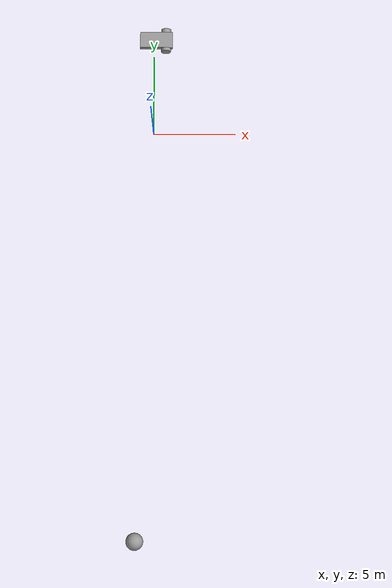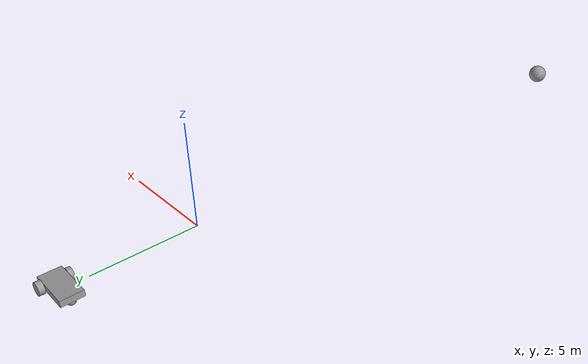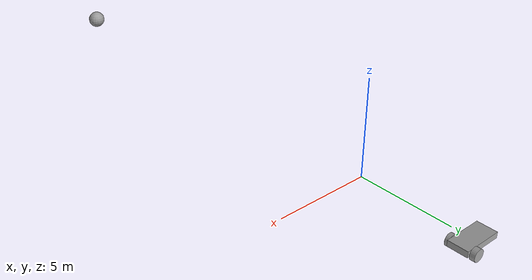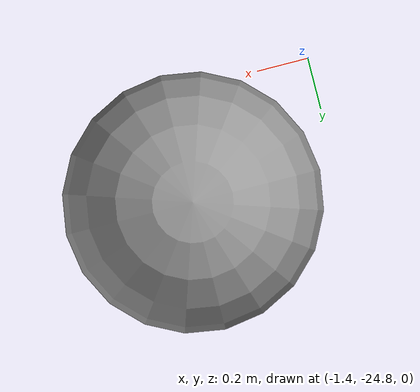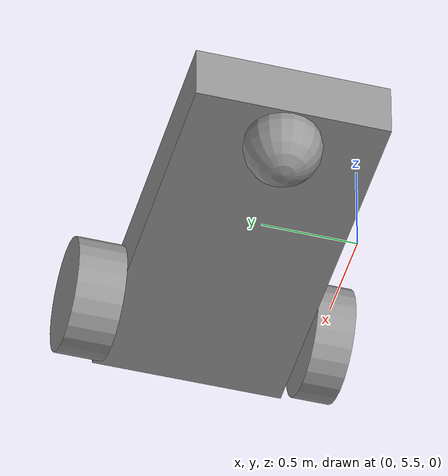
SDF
<?xml version='1.0'?>
<sdf version='1.7'>
  <model name='MyRobot'>
    <link name='link_0'>
      <inertial>
        <mass>1</mass>
        <inertia>
          <ixx>0.166667</ixx>
          <ixy>0</ixy>
          <ixz>0</ixz>
          <iyy>0.166667</iyy>
          <iyz>0</iyz>
          <izz>0.166667</izz>
        </inertia>
        <pose>0 0 0 0 -0 0</pose>
      </inertial>
      <pose>0.108951 6.08754 0.06 0 -0 0</pose>
      <gravity>1</gravity>
      <self_collide>0</self_collide>
      <kinematic>0</kinematic>
      <enable_wind>0</enable_wind>
      <visual name='visual'>
        <pose>0 0 0 0 -0 0</pose>
        <geometry>
          <box>
            <size>2 1 0.3</size>
          </box>
        </geometry>
        <material>
          <lighting>1</lighting>
          <script>
            <uri>file://media/materials/scripts/gazebo.material</uri>
            <name>Gazebo/Grey</name>
          </script>
          <shader type='pixel'>
            <normal_map>__default__</normal_map>
          </shader>
          <ambient>0.3 0.3 0.3 1</ambient>
          <diffuse>0.7 0.7 0.7 1</diffuse>
          <specular>0.01 0.01 0.01 1</specular>
          <emissive>0 0 0 1</emissive>
        </material>
        <transparency>0</transparency>
        <cast_shadows>1</cast_shadows>
      </visual>
      <collision name='collision'>
        <laser_retro>0</laser_retro>
        <max_contacts>10</max_contacts>
        <pose>0 0 0 0 -0 0</pose>
        <geometry>
          <box>
            <size>2 1 0.3</size>
          </box>
        </geometry>
        <surface>
          <friction>
            <ode>
              <mu>1</mu>
              <mu2>1</mu2>
              <fdir1>0 0 0</fdir1>
              <slip1>0</slip1>
              <slip2>0</slip2>
            </ode>
            <torsional>
              <coefficient>1</coefficient>
              <patch_radius>0</patch_radius>
              <surface_radius>0</surface_radius>
              <use_patch_radius>1</use_patch_radius>
              <ode>
                <slip>0</slip>
              </ode>
            </torsional>
          </friction>
          <bounce>
            <restitution_coefficient>0</restitution_coefficient>
            <threshold>1e+06</threshold>
          </bounce>
          <contact>
            <collide_without_contact>0</collide_without_contact>
            <collide_without_contact_bitmask>1</collide_without_contact_bitmask>
            <collide_bitmask>1</collide_bitmask>
            <ode>
              <soft_cfm>0</soft_cfm>
              <soft_erp>0.2</soft_erp>
              <kp>1e+13</kp>
              <kd>1</kd>
              <max_vel>0.01</max_vel>
              <min_depth>0</min_depth>
            </ode>
            <bullet>
              <split_impulse>1</split_impulse>
              <split_impulse_penetration_threshold>-0.01</split_impulse_penetration_threshold>
              <soft_cfm>0</soft_cfm>
              <soft_erp>0.2</soft_erp>
              <kp>1e+13</kp>
              <kd>1</kd>
            </bullet>
          </contact>
        </surface>
      </collision>
    </link>
    <link name='link_2'>
      <inertial>
        <mass>1</mass>
        <inertia>
          <ixx>0.145833</ixx>
          <ixy>0</ixy>
          <ixz>0</ixz>
          <iyy>0.145833</iyy>
          <iyz>0</iyz>
          <izz>0.125</izz>
        </inertia>
        <pose>0.6 0 0 0 -0 0</pose>
      </inertial>
      <pose>0.708951 6.71257 -0.04 1.5707 -0 0</pose>
      <gravity>1</gravity>
      <self_collide>0</self_collide>
      <kinematic>0</kinematic>
      <enable_wind>0</enable_wind>
      <visual name='visual'>
        <pose>0 0 0 0 -0 0</pose>
        <geometry>
          <cylinder>
            <radius>0.3</radius>
            <length>0.25</length>
          </cylinder>
        </geometry>
        <material>
          <lighting>1</lighting>
          <script>
            <uri>file://media/materials/scripts/gazebo.material</uri>
            <name>Gazebo/Grey</name>
          </script>
          <shader type='pixel'>
            <normal_map>__default__</normal_map>
          </shader>
          <ambient>0.3 0.3 0.3 1</ambient>
          <diffuse>0.7 0.7 0.7 1</diffuse>
          <specular>0.01 0.01 0.01 1</specular>
          <emissive>0 0 0 1</emissive>
        </material>
        <transparency>0</transparency>
        <cast_shadows>1</cast_shadows>
      </visual>
      <collision name='collision'>
        <laser_retro>0</laser_retro>
        <max_contacts>10</max_contacts>
        <pose>0 0 0 0 -0 0</pose>
        <geometry>
          <cylinder>
            <radius>0.3</radius>
            <length>0.25</length>
          </cylinder>
        </geometry>
        <surface>
          <friction>
            <ode>
              <mu>1</mu>
              <mu2>1</mu2>
              <fdir1>0 0 0</fdir1>
              <slip1>0</slip1>
              <slip2>0</slip2>
            </ode>
            <torsional>
              <coefficient>1</coefficient>
              <patch_radius>0</patch_radius>
              <surface_radius>0</surface_radius>
              <use_patch_radius>1</use_patch_radius>
              <ode>
                <slip>0</slip>
              </ode>
            </torsional>
          </friction>
          <bounce>
            <restitution_coefficient>0</restitution_coefficient>
            <threshold>1e+06</threshold>
          </bounce>
          <contact>
            <collide_without_contact>0</collide_without_contact>
            <collide_without_contact_bitmask>1</collide_without_contact_bitmask>
            <collide_bitmask>1</collide_bitmask>
            <ode>
              <soft_cfm>0</soft_cfm>
              <soft_erp>0.2</soft_erp>
              <kp>1e+13</kp>
              <kd>1</kd>
              <max_vel>0.01</max_vel>
              <min_depth>0</min_depth>
            </ode>
            <bullet>
              <split_impulse>1</split_impulse>
              <split_impulse_penetration_threshold>-0.01</split_impulse_penetration_threshold>
              <soft_cfm>0</soft_cfm>
              <soft_erp>0.2</soft_erp>
              <kp>1e+13</kp>
              <kd>1</kd>
            </bullet>
          </contact>
        </surface>
      </collision>
    </link>
    <link name='link_3'>
      <inertial>
        <mass>1</mass>
        <inertia>
          <ixx>0.145833</ixx>
          <ixy>0</ixy>
          <ixz>0</ixz>
          <iyy>0.145833</iyy>
          <iyz>0</iyz>
          <izz>0.125</izz>
        </inertia>
        <pose>0 0 0 0 -0 0</pose>
      </inertial>
      <pose>0.708951 5.48751 -0.04 1.5707 -0 0</pose>
      <gravity>1</gravity>
      <self_collide>0</self_collide>
      <kinematic>0</kinematic>
      <enable_wind>0</enable_wind>
      <visual name='visual'>
        <pose>0 0 0 0 -0 0</pose>
        <geometry>
          <cylinder>
            <radius>0.3</radius>
            <length>0.2</length>
          </cylinder>
        </geometry>
        <material>
          <lighting>1</lighting>
          <script>
            <uri>file://media/materials/scripts/gazebo.material</uri>
            <name>Gazebo/Grey</name>
          </script>
          <shader type='pixel'>
            <normal_map>__default__</normal_map>
          </shader>
          <ambient>0.3 0.3 0.3 1</ambient>
          <diffuse>0.7 0.7 0.7 1</diffuse>
          <specular>0.01 0.01 0.01 1</specular>
          <emissive>0 0 0 1</emissive>
        </material>
        <transparency>0</transparency>
        <cast_shadows>1</cast_shadows>
      </visual>
      <collision name='collision'>
        <laser_retro>0</laser_retro>
        <max_contacts>10</max_contacts>
        <pose>0 0 0 0 -0 0</pose>
        <geometry>
          <cylinder>
            <radius>0.3</radius>
            <length>0.2</length>
          </cylinder>
        </geometry>
        <surface>
          <friction>
            <ode>
              <mu>1</mu>
              <mu2>1</mu2>
              <fdir1>0 0 0</fdir1>
              <slip1>0</slip1>
              <slip2>0</slip2>
            </ode>
            <torsional>
              <coefficient>1</coefficient>
              <patch_radius>0</patch_radius>
              <surface_radius>0</surface_radius>
              <use_patch_radius>1</use_patch_radius>
              <ode>
                <slip>0</slip>
              </ode>
            </torsional>
          </friction>
          <bounce>
            <restitution_coefficient>0</restitution_coefficient>
            <threshold>1e+06</threshold>
          </bounce>
          <contact>
            <collide_without_contact>0</collide_without_contact>
            <collide_without_contact_bitmask>1</collide_without_contact_bitmask>
            <collide_bitmask>1</collide_bitmask>
            <ode>
              <soft_cfm>0</soft_cfm>
              <soft_erp>0.2</soft_erp>
              <kp>1e+13</kp>
              <kd>1</kd>
              <max_vel>0.01</max_vel>
              <min_depth>0</min_depth>
            </ode>
            <bullet>
              <split_impulse>1</split_impulse>
              <split_impulse_penetration_threshold>-0.01</split_impulse_penetration_threshold>
              <soft_cfm>0</soft_cfm>
              <soft_erp>0.2</soft_erp>
              <kp>1e+13</kp>
              <kd>1</kd>
            </bullet>
          </contact>
        </surface>
      </collision>
    </link>
    <link name='link_4'>
      <inertial>
        <mass>1</mass>
        <inertia>
          <ixx>0.1</ixx>
          <ixy>0</ixy>
          <ixz>0</ixz>
          <iyy>0.1</iyy>
          <iyz>0</iyz>
          <izz>0.1</izz>
        </inertia>
      </inertial>
      <pose>-0.835803 -24.3751 0.16 0 -0 0</pose>
      <visual name='visual'>
        <pose>0 0 0 0 -0 0</pose>
        <geometry>
          <sphere>
            <radius>0.5</radius>
          </sphere>
        </geometry>
        <material>
          <lighting>1</lighting>
          <script>
            <uri>file://media/materials/scripts/gazebo.material</uri>
            <name>Gazebo/Grey</name>
          </script>
          <shader type='pixel'/>
        </material>
        <transparency>0</transparency>
        <cast_shadows>1</cast_shadows>
      </visual>
      <collision name='collision'>
        <laser_retro>0</laser_retro>
        <max_contacts>10</max_contacts>
        <pose>0 0 0 0 -0 0</pose>
        <geometry>
          <sphere>
            <radius>0.5</radius>
          </sphere>
        </geometry>
        <surface>
          <friction>
            <ode>
              <mu>1</mu>
              <mu2>1</mu2>
              <fdir1>0 0 0</fdir1>
              <slip1>0</slip1>
              <slip2>0</slip2>
            </ode>
            <torsional>
              <coefficient>1</coefficient>
              <patch_radius>0</patch_radius>
              <surface_radius>0</surface_radius>
              <use_patch_radius>1</use_patch_radius>
              <ode>
                <slip>0</slip>
              </ode>
            </torsional>
          </friction>
          <bounce>
            <restitution_coefficient>0</restitution_coefficient>
            <threshold>1e+06</threshold>
          </bounce>
          <contact>
            <collide_without_contact>0</collide_without_contact>
            <collide_without_contact_bitmask>1</collide_without_contact_bitmask>
            <collide_bitmask>1</collide_bitmask>
            <ode>
              <soft_cfm>0</soft_cfm>
              <soft_erp>0.2</soft_erp>
              <kp>1e+13</kp>
              <kd>1</kd>
              <max_vel>0.01</max_vel>
              <min_depth>0</min_depth>
            </ode>
            <bullet>
              <split_impulse>1</split_impulse>
              <split_impulse_penetration_threshold>-0.01</split_impulse_penetration_threshold>
              <soft_cfm>0</soft_cfm>
              <soft_erp>0.2</soft_erp>
              <kp>1e+13</kp>
              <kd>1</kd>
            </bullet>
          </contact>
        </surface>
      </collision>
    </link>
    <link name='link_6'>
      <inertial>
        <mass>1</mass>
        <inertia>
          <ixx>0.1</ixx>
          <ixy>0</ixy>
          <ixz>0</ixz>
          <iyy>0.1</iyy>
          <iyz>0</iyz>
          <izz>0.1</izz>
        </inertia>
        <pose>0 0 0 0 -0 0</pose>
      </inertial>
      <pose>-0.691049 6.08754 -0.14 0 -0 0</pose>
      <gravity>1</gravity>
      <self_collide>0</self_collide>
      <kinematic>0</kinematic>
      <enable_wind>0</enable_wind>
      <visual name='visual'>
        <pose>0 0 0 0 -0 0</pose>
        <geometry>
          <sphere>
            <radius>0.2</radius>
          </sphere>
        </geometry>
        <material>
          <lighting>1</lighting>
          <script>
            <uri>file://media/materials/scripts/gazebo.material</uri>
            <name>Gazebo/Grey</name>
          </script>
          <shader type='pixel'>
            <normal_map>__default__</normal_map>
          </shader>
          <ambient>0.3 0.3 0.3 1</ambient>
          <diffuse>0.7 0.7 0.7 1</diffuse>
          <specular>0.01 0.01 0.01 1</specular>
          <emissive>0 0 0 1</emissive>
        </material>
        <transparency>0</transparency>
        <cast_shadows>1</cast_shadows>
      </visual>
      <collision name='collision'>
        <laser_retro>0</laser_retro>
        <max_contacts>10</max_contacts>
        <pose>0 0 0 0 -0 0</pose>
        <geometry>
          <sphere>
            <radius>0.2</radius>
          </sphere>
        </geometry>
        <surface>
          <friction>
            <ode>
              <mu>1</mu>
              <mu2>1</mu2>
              <fdir1>0 0 0</fdir1>
              <slip1>0</slip1>
              <slip2>0</slip2>
            </ode>
            <torsional>
              <coefficient>1</coefficient>
              <patch_radius>0</patch_radius>
              <surface_radius>0</surface_radius>
              <use_patch_radius>1</use_patch_radius>
              <ode>
                <slip>0</slip>
              </ode>
            </torsional>
          </friction>
          <bounce>
            <restitution_coefficient>0</restitution_coefficient>
            <threshold>1e+06</threshold>
          </bounce>
          <contact>
            <collide_without_contact>0</collide_without_contact>
            <collide_without_contact_bitmask>1</collide_without_contact_bitmask>
            <collide_bitmask>1</collide_bitmask>
            <ode>
              <soft_cfm>0</soft_cfm>
              <soft_erp>0.2</soft_erp>
              <kp>1e+13</kp>
              <kd>1</kd>
              <max_vel>0.01</max_vel>
              <min_depth>0</min_depth>
            </ode>
            <bullet>
              <split_impulse>1</split_impulse>
              <split_impulse_penetration_threshold>-0.01</split_impulse_penetration_threshold>
              <soft_cfm>0</soft_cfm>
              <soft_erp>0.2</soft_erp>
              <kp>1e+13</kp>
              <kd>1</kd>
            </bullet>
          </contact>
        </surface>
      </collision>
    </link>
    <joint name='link_0_JOINT_0' type='revolute'>
      <parent>link_0</parent>
      <child>link_2</child>
      <pose>0 0 0 0 -0 0</pose>
      <axis>
        <xyz>0 0 1</xyz>
        <limit>
          <lower>-1.79769e+308</lower>
          <upper>1.79769e+308</upper>
          <effort>-1</effort>
          <velocity>-1</velocity>
        </limit>
        <dynamics>
          <spring_reference>0</spring_reference>
          <spring_stiffness>0</spring_stiffness>
          <damping>0</damping>
        </dynamics>
      </axis>
      <physics>
        <ode>
          <limit>
            <cfm>0</cfm>
            <erp>0.2</erp>
          </limit>
          <suspension>
            <cfm>0</cfm>
            <erp>0.2</erp>
          </suspension>
        </ode>
      </physics>
    </joint>
    <joint name='link_0_JOINT_2' type='ball'>
      <parent>link_0</parent>
      <child>link_6</child>
      <pose>0 0 0 0 -0 0</pose>
      <physics>
        <ode>
          <limit>
            <cfm>0</cfm>
            <erp>0.2</erp>
          </limit>
          <suspension>
            <cfm>0</cfm>
            <erp>0.2</erp>
          </suspension>
        </ode>
      </physics>
    </joint>
    <static>0</static>
    <allow_auto_disable>1</allow_auto_disable>
  </model>
</sdf>
